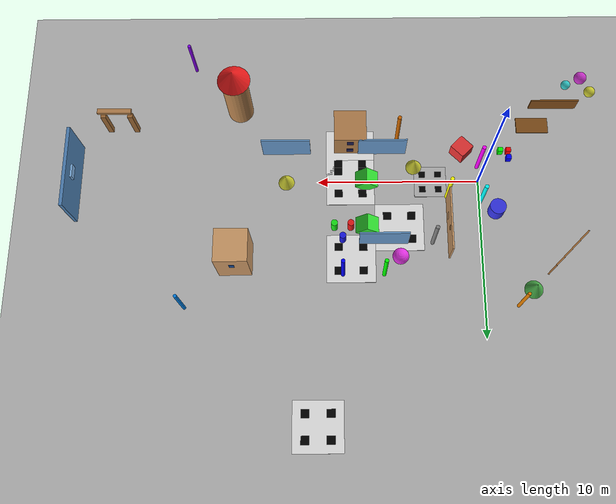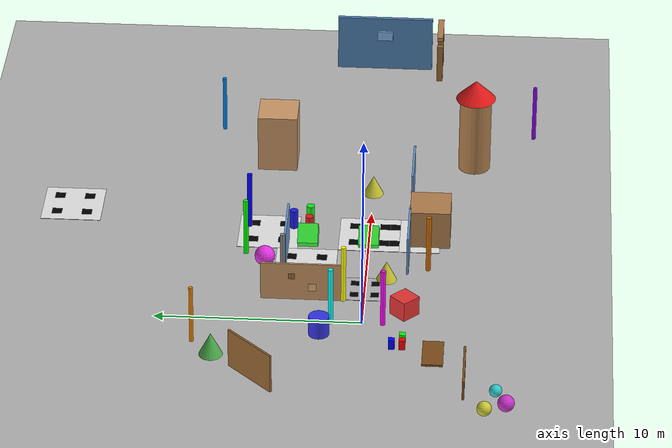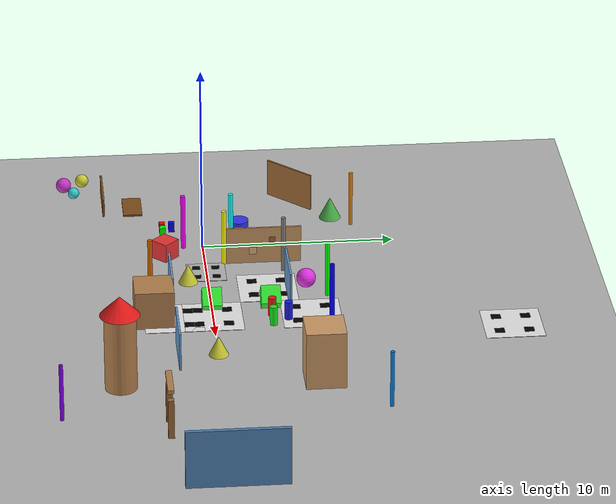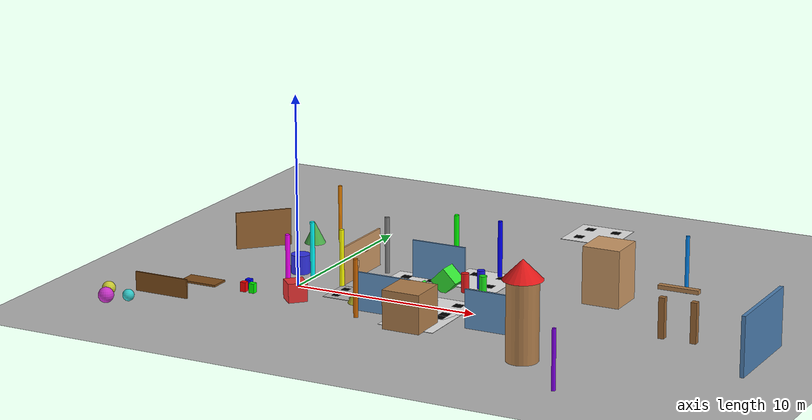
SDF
<?xml version="1.0"?>
<sdf version="1.9">
  <world name="custom_world">

    <!-- ========== PX4 必需配置：球面坐标系 ========== -->
    <spherical_coordinates>
      <surface_model>EARTH_WGS84</surface_model>
      <world_frame_orientation>ENU</world_frame_orientation>
      <latitude_deg>47.397742</latitude_deg>
      <longitude_deg>8.545594</longitude_deg>
      <elevation>488.0</elevation>
      <heading_deg>0</heading_deg>
    </spherical_coordinates>

    <!-- ========== 环境设置 ========== -->
    <gravity>0 0 -9.8</gravity>
    <magnetic_field>6e-06 2.3e-05 -4.2e-05</magnetic_field>
    <atmosphere type='adiabatic'/>

    <!-- ========== PX4 必需插件 ========== -->
    <plugin
      filename="gz-sim-physics-system"
      name="gz::sim::systems::Physics">
    </plugin>
    <plugin
      filename="gz-sim-user-commands-system"
      name="gz::sim::systems::UserCommands">
    </plugin>
    <plugin
      filename="gz-sim-scene-broadcaster-system"
      name="gz::sim::systems::SceneBroadcaster">
    </plugin>
    <plugin
      filename="gz-sim-imu-system"
      name="gz::sim::systems::Imu">
    </plugin>
    <plugin
      filename="gz-sim-magnetometer-system"
      name="gz::sim::systems::Magnetometer">
    </plugin>
    <plugin
      filename="gz-sim-air-pressure-system"
      name="gz::sim::systems::AirPressure">
    </plugin>
    <plugin
      filename="gz-sim-sensors-system"
      name="gz::sim::systems::Sensors">
      <render_engine>ogre2</render_engine>
    </plugin>
    <plugin
      filename="gz-sim-navsat-system"
      name="gz::sim::systems::NavSat">
    </plugin>

    <!-- 物理引擎设置 -->
    <physics name="1ms" type="ignored">
      <max_step_size>0.001</max_step_size>
      <real_time_factor>1.0</real_time_factor>
    </physics>

    <!-- 添加地面 -->
    <model name="ground_plane">
      <static>true</static>
      <link name="link">
        <collision name="collision">
          <geometry>
            <plane>
              <normal>0 0 1</normal>
              <size>100 100</size>
            </plane>
          </geometry>
        </collision>
        <visual name="visual">
          <geometry>
            <plane>
              <normal>0 0 1</normal>
              <size>100 100</size>
            </plane>
          </geometry>
          <material>
            <ambient>0.7 0.7 0.7 1</ambient>
            <diffuse>0.7 0.7 0.7 1</diffuse>
            <specular>0 0 0 0</specular>
          </material>
        </visual>
      </link>
    </model>

    <!-- 添加方向光 -->
    <light name="sun" type="directional">
      <pose>0 0 10 0 0 0</pose>
      <direction>-0.5 0.5 -1</direction>
      <diffuse>1 1 1 1</diffuse>
      <specular>0.5 0.5 0.5 1</specular>
      <attenuation>
        <range>1000</range>
        <constant>0.9</constant>
        <linear>0.01</linear>
        <quadratic>0.001</quadratic>
      </attenuation>
      <cast_shadows>true</cast_shadows>
    </light>

    <!-- ========== 视觉SLAM特征点 ========== -->
<model name="extended_checkerboard1">
      <pose>8 0 0.02 0 0 0</pose>
      <static>true</static>
      <link name="link">
        <visual name="board">
          <geometry>
            <box>
              <size>3 3 0.02</size>
            </box>
          </geometry>
          <material>
            <ambient>0.9 0.9 0.9 1</ambient>
            <diffuse>0.9 0.9 0.9 1</diffuse>
          </material>
        </visual>
        <!-- 棋盘格图案 -->
        <visual name="checker_n1">
          <pose>0.75 0.75 0.021 0 0 0</pose>
          <geometry>
            <box>
              <size>0.5 0.5 0.001</size>
            </box>
          </geometry>
          <material>
            <ambient>0 0 0 1</ambient>
            <diffuse>0 0 0 1</diffuse>
          </material>
        </visual>
        <visual name="checker_n2">
          <pose>-0.75 0.75 0.021 0 0 0</pose>
          <geometry>
            <box>
              <size>0.5 0.5 0.001</size>
            </box>
          </geometry>
          <material>
            <ambient>0 0 0 1</ambient>
            <diffuse>0 0 0 1</diffuse>
          </material>
        </visual>
        <visual name="checker_n3">
          <pose>0.75 -0.75 0.021 0 0 0</pose>
          <geometry>
            <box>
              <size>0.5 0.5 0.001</size>
            </box>
          </geometry>
          <material>
            <ambient>0 0 0 1</ambient>
            <diffuse>0 0 0 1</diffuse>
          </material>
        </visual>
        <visual name="checker_n4">
          <pose>-0.75 -0.75 0.021 0 0 0</pose>
          <geometry>
            <box>
              <size>0.5 0.5 0.001</size>
            </box>
          </geometry>
          <material>
            <ambient>0 0 0 1</ambient>
            <diffuse>0 0 0 1</diffuse>
          </material>
        </visual>
      </link>
    </model>

<model name="extended_checkerboard2">
      <pose>8 5 0.02 0 0 0</pose>
      <static>true</static>
      <link name="link">
        <visual name="board">
          <geometry>
            <box>
              <size>3 3 0.02</size>
            </box>
          </geometry>
          <material>
            <ambient>0.9 0.9 0.9 1</ambient>
            <diffuse>0.9 0.9 0.9 1</diffuse>
          </material>
        </visual>
        <!-- 棋盘格图案 -->
        <visual name="checker_n1">
          <pose>0.75 0.75 0.021 0 0 0</pose>
          <geometry>
            <box>
              <size>0.5 0.5 0.001</size>
            </box>
          </geometry>
          <material>
            <ambient>0 0 0 1</ambient>
            <diffuse>0 0 0 1</diffuse>
          </material>
        </visual>
        <visual name="checker_n2">
          <pose>-0.75 0.75 0.021 0 0 0</pose>
          <geometry>
            <box>
              <size>0.5 0.5 0.001</size>
            </box>
          </geometry>
          <material>
            <ambient>0 0 0 1</ambient>
            <diffuse>0 0 0 1</diffuse>
          </material>
        </visual>
        <visual name="checker_n3">
          <pose>0.75 -0.75 0.021 0 0 0</pose>
          <geometry>
            <box>
              <size>0.5 0.5 0.001</size>
            </box>
          </geometry>
          <material>
            <ambient>0 0 0 1</ambient>
            <diffuse>0 0 0 1</diffuse>
          </material>
        </visual>
        <visual name="checker_n4">
          <pose>-0.75 -0.75 0.021 0 0 0</pose>
          <geometry>
            <box>
              <size>0.5 0.5 0.001</size>
            </box>
          </geometry>
          <material>
            <ambient>0 0 0 1</ambient>
            <diffuse>0 0 0 1</diffuse>
          </material>
        </visual>
      </link>
    </model>

    <model name="extended_checkerboard3">
      <pose>5 3 0.02 0 0 0</pose>
      <static>true</static>
      <link name="link">
        <visual name="board">
          <geometry>
            <box>
              <size>3 3 0.02</size>
            </box>
          </geometry>
          <material>
            <ambient>0.9 0.9 0.9 1</ambient>
            <diffuse>0.9 0.9 0.9 1</diffuse>
          </material>
        </visual>
        <!-- 棋盘格图案 -->
        <visual name="checker_n1">
          <pose>0.75 0.75 0.021 0 0 0</pose>
          <geometry>
            <box>
              <size>0.5 0.5 0.001</size>
            </box>
          </geometry>
          <material>
            <ambient>0 0 0 1</ambient>
            <diffuse>0 0 0 1</diffuse>
          </material>
        </visual>
        <visual name="checker_n2">
          <pose>-0.75 0.75 0.021 0 0 0</pose>
          <geometry>
            <box>
              <size>0.5 0.5 0.001</size>
            </box>
          </geometry>
          <material>
            <ambient>0 0 0 1</ambient>
            <diffuse>0 0 0 1</diffuse>
          </material>
        </visual>
        <visual name="checker_n3">
          <pose>0.75 -0.75 0.021 0 0 0</pose>
          <geometry>
            <box>
              <size>0.5 0.5 0.001</size>
            </box>
          </geometry>
          <material>
            <ambient>0 0 0 1</ambient>
            <diffuse>0 0 0 1</diffuse>
          </material>
        </visual>
        <visual name="checker_n4">
          <pose>-0.75 -0.75 0.021 0 0 0</pose>
          <geometry>
            <box>
              <size>0.5 0.5 0.001</size>
            </box>
          </geometry>
          <material>
            <ambient>0 0 0 1</ambient>
            <diffuse>0 0 0 1</diffuse>
          </material>
        </visual>
      </link>
    </model>

<model name="extended_checkerboard5">
      <pose>8 -2 0.02 0 0 0</pose>
      <static>true</static>
      <link name="link">
        <visual name="board">
          <geometry>
            <box>
              <size>3 3 0.02</size>
            </box>
          </geometry>
          <material>
            <ambient>0.9 0.9 0.9 1</ambient>
            <diffuse>0.9 0.9 0.9 1</diffuse>
          </material>
        </visual>
        <!-- 棋盘格图案 -->
        <visual name="checker_n1">
          <pose>0.75 0.75 0.021 0 0 0</pose>
          <geometry>
            <box>
              <size>0.5 0.5 0.001</size>
            </box>
          </geometry>
          <material>
            <ambient>0 0 0 1</ambient>
            <diffuse>0 0 0 1</diffuse>
          </material>
        </visual>
        <visual name="checker_n2">
          <pose>-0.75 0.75 0.021 0 0 0</pose>
          <geometry>
            <box>
              <size>0.5 0.5 0.001</size>
            </box>
          </geometry>
          <material>
            <ambient>0 0 0 1</ambient>
            <diffuse>0 0 0 1</diffuse>
          </material>
        </visual>
        <visual name="checker_n3">
          <pose>0.75 -0.75 0.021 0 0 0</pose>
          <geometry>
            <box>
              <size>0.5 0.5 0.001</size>
            </box>
          </geometry>
          <material>
            <ambient>0 0 0 1</ambient>
            <diffuse>0 0 0 1</diffuse>
          </material>
        </visual>
        <visual name="checker_n4">
          <pose>-0.75 -0.75 0.021 0 0 0</pose>
          <geometry>
            <box>
              <size>0.5 0.5 0.001</size>
            </box>
          </geometry>
          <material>
            <ambient>0 0 0 1</ambient>
            <diffuse>0 0 0 1</diffuse>
          </material>
        </visual>
      </link>
    </model>

    <!-- 棋盘格地面标记1（黑白棋盘） -->
    <model name="checkerboard_1">
      <pose>3 0 0.02 0 0 0</pose>
      <static>true</static>
      <link name="link">
        <visual name="visual">
          <geometry>
            <box>
              <size>2 2 0.02</size>
            </box>
          </geometry>
          <material>
            <ambient>0.3 0.3 0.3 1</ambient>
            <diffuse>0.7 0.7 0.7 1</diffuse>
            <specular>0.1 0.1 0.1 1</specular>
          </material>
        </visual>

        <!-- 添加棋盘纹理通过多个小方块实现 -->
        <visual name="checker_1">
          <pose>0.5 0.5 0.021 0 0 0</pose>
          <geometry>
            <box>
              <size>0.4 0.4 0.001</size>
            </box>
          </geometry>
          <material>
            <ambient>0 0 0 1</ambient>
            <diffuse>0 0 0 1</diffuse>
          </material>
        </visual>
        <visual name="checker_2">
          <pose>-0.5 0.5 0.021 0 0 0</pose>
          <geometry>
            <box>
              <size>0.4 0.4 0.001</size>
            </box>
          </geometry>
          <material>
            <ambient>0 0 0 1</ambient>
            <diffuse>0 0 0 1</diffuse>
          </material>
        </visual>
        <visual name="checker_3">
          <pose>0.5 -0.5 0.021 0 0 0</pose>
          <geometry>
            <box>
              <size>0.4 0.4 0.001</size>
            </box>
          </geometry>
          <material>
            <ambient>0 0 0 1</ambient>
            <diffuse>0 0 0 1</diffuse>
          </material>
        </visual>
        <visual name="checker_4">
          <pose>-0.5 -0.5 0.021 0 0 0</pose>
          <geometry>
            <box>
              <size>0.4 0.4 0.001</size>
            </box>
          </geometry>
          <material>
            <ambient>0 0 0 1</ambient>
            <diffuse>0 0 0 1</diffuse>
          </material>
        </visual>
      </link>
    </model>

    <!-- 扩展区域：更多特征物体 -->

    <!-- 扩展区域1：西北区域 (-10到0, 0到10) -->
    <model name="extended_wall_nw1">
      <pose>-5 5 1 0 0 0.785</pose>
      <static>true</static>
      <link name="link">
        <collision name="collision">
          <geometry>
            <box>
              <size>3 0.1 2</size>
            </box>
          </geometry>
        </collision>
        <visual name="visual">
          <geometry>
            <box>
              <size>3 0.1 2</size>
            </box>
          </geometry>
          <material>
            <ambient>0.6 0.4 0.2 1</ambient>
            <diffuse>0.6 0.4 0.2 1</diffuse>
          </material>
        </visual>
      </link>
    </model>

    <model name="extended_pyramid_nw">
      <pose>-3 7 0.5 0 0 0</pose>
      <static>true</static>
      <link name="link">
        <collision name="collision">
          <geometry>
            <cone>
              <radius>0.6</radius>
              <length>1.2</length>
            </cone>
          </geometry>
        </collision>
        <visual name="visual">
          <geometry>
            <cone>
              <radius>0.6</radius>
              <length>1.2</length>
            </cone>
          </geometry>
          <material>
            <ambient>0.3 0.7 0.3 1</ambient>
            <diffuse>0.3 0.7 0.3 1</diffuse>
          </material>
        </visual>
      </link>
    </model>

    <!-- 扩展区域2：东北区域 (10到20, 0到10) -->
    <model name="extended_building_ne">
      <pose>15 5 1.5 0 0 0</pose>
      <static>true</static>
      <link name="link">
        <collision name="collision">
          <geometry>
            <box>
              <size>2 2 3</size>
            </box>
          </geometry>
        </collision>
        <visual name="visual">
          <geometry>
            <box>
              <size>2 2 3</size>
            </box>
          </geometry>
          <material>
            <ambient>0.8 0.6 0.4 1</ambient>
            <diffuse>0.8 0.6 0.4 1</diffuse>
          </material>
        </visual>
        <!-- 窗户细节 -->
        <visual name="window_ne1">
          <pose>0 1.01 0.5 0 0 0</pose>
          <geometry>
            <box>
              <size>0.3 0.02 0.5</size>
            </box>
          </geometry>
          <material>
            <ambient>0.1 0.3 0.6 1</ambient>
            <diffuse>0.1 0.3 0.6 1</diffuse>
          </material>
        </visual>
      </link>
    </model>

    <model name="extended_cylinder_array_ne">
      <pose>8 3 0 0 0 0</pose>
      <static>true</static>
      <link name="link">
        <visual name="cyl1">
          <pose>0 0 0.5 0 0 0</pose>
          <geometry>
            <cylinder>
              <radius>0.2</radius>
              <length>1</length>
            </cylinder>
          </geometry>
          <material>
            <ambient>0.9 0.1 0.1 1</ambient>
            <diffuse>0.9 0.1 0.1 1</diffuse>
          </material>
        </visual>
        <visual name="cyl2">
          <pose>1 0 0.5 0 0 0</pose>
          <geometry>
            <cylinder>
              <radius>0.2</radius>
              <length>1</length>
            </cylinder>
          </geometry>
          <material>
            <ambient>0.1 0.9 0.1 1</ambient>
            <diffuse>0.1 0.9 0.1 1</diffuse>
          </material>
        </visual>
        <visual name="cyl3">
          <pose>0.5 0.8 0.5 0 0 0</pose>
          <geometry>
            <cylinder>
              <radius>0.2</radius>
              <length>1</length>
            </cylinder>
          </geometry>
          <material>
            <ambient>0.1 0.1 0.9 1</ambient>
            <diffuse>0.1 0.1 0.9 1</diffuse>
          </material>
        </visual>
      </link>
    </model>

    <!-- 扩展区域3：西南区域 (-10到0, -10到0) -->
    <model name="extended_maze_sw">
      <pose>-5 -5 0.25 0 0 0</pose>
      <static>true</static>
      <link name="link">
        <!-- L形墙1 -->
        <visual name="maze_wall1">
          <pose>0 0 0.5 0 0 0</pose>
          <geometry>
            <box>
              <size>3 0.1 1</size>
            </box>
          </geometry>
          <material>
            <ambient>0.5 0.3 0.1 1</ambient>
            <diffuse>0.5 0.3 0.1 1</diffuse>
          </material>
        </visual>
        <visual name="maze_wall2">
          <pose>1.5 1.5 0.5 1.57 0 0</pose>
          <geometry>
            <box>
              <size>2 0.1 1</size>
            </box>
          </geometry>
          <material>
            <ambient>0.5 0.3 0.1 1</ambient>
            <diffuse>0.5 0.3 0.1 1</diffuse>
          </material>
        </visual>
      </link>
    </model>

    <model name="extended_sphere_cluster_sw">
      <pose>-7 -7 0.5 0 0 0</pose>
      <static>true</static>
      <link name="link">
        <visual name="sphere1">
          <pose>0 0 0 0 0 0</pose>
          <geometry>
            <sphere>
              <radius>0.4</radius>
            </sphere>
          </geometry>
          <material>
            <ambient>0.8 0.2 0.8 1</ambient>
            <diffuse>0.8 0.2 0.8 1</diffuse>
          </material>
        </visual>
        <visual name="sphere2">
          <pose>1 0.5 0 0 0 0</pose>
          <geometry>
            <sphere>
              <radius>0.3</radius>
            </sphere>
          </geometry>
          <material>
            <ambient>0.2 0.8 0.8 1</ambient>
            <diffuse>0.2 0.8 0.8 1</diffuse>
          </material>
        </visual>
        <visual name="sphere3">
          <pose>-0.5 1 0 0 0 0</pose>
          <geometry>
            <sphere>
              <radius>0.35</radius>
            </sphere>
          </geometry>
          <material>
            <ambient>0.8 0.8 0.2 1</ambient>
            <diffuse>0.8 0.8 0.2 1</diffuse>
          </material>
        </visual>
      </link>
    </model>

    <!-- 扩展区域4：东南区域 (10到20, -10到0) -->
    <model name="extended_tower_se">
      <pose>15 -5 2 0 0 0</pose>
      <static>true</static>
      <link name="link">
        <collision name="collision">
          <geometry>
            <cylinder>
              <radius>0.8</radius>
              <length>4</length>
            </cylinder>
          </geometry>
        </collision>
        <visual name="visual">
          <geometry>
            <cylinder>
              <radius>0.8</radius>
              <length>4</length>
            </cylinder>
          </geometry>
          <material>
            <ambient>0.7 0.5 0.3 1</ambient>
            <diffuse>0.7 0.5 0.3 1</diffuse>
          </material>
        </visual>
        <!-- 塔顶 -->
        <visual name="tower_top">
          <pose>0 0 2.5 0 0 0</pose>
          <geometry>
            <cone>
              <radius>1</radius>
              <length>1</length>
            </cone>
          </geometry>
          <material>
            <ambient>0.9 0.1 0.1 1</ambient>
            <diffuse>0.9 0.1 0.1 1</diffuse>
          </material>
        </visual>
      </link>
    </model>

    <!-- 扩展区域5：远北区域 (0到20, 10到20) -->
    <model name="extended_checkerboard_north">
      <pose>10 15 0.02 0 0 0</pose>
      <static>true</static>
      <link name="link">
        <visual name="board">
          <geometry>
            <box>
              <size>3 3 0.02</size>
            </box>
          </geometry>
          <material>
            <ambient>0.9 0.9 0.9 1</ambient>
            <diffuse>0.9 0.9 0.9 1</diffuse>
          </material>
        </visual>
        <!-- 棋盘格图案 -->
        <visual name="checker_n1">
          <pose>0.75 0.75 0.021 0 0 0</pose>
          <geometry>
            <box>
              <size>0.5 0.5 0.001</size>
            </box>
          </geometry>
          <material>
            <ambient>0 0 0 1</ambient>
            <diffuse>0 0 0 1</diffuse>
          </material>
        </visual>
        <visual name="checker_n2">
          <pose>-0.75 0.75 0.021 0 0 0</pose>
          <geometry>
            <box>
              <size>0.5 0.5 0.001</size>
            </box>
          </geometry>
          <material>
            <ambient>0 0 0 1</ambient>
            <diffuse>0 0 0 1</diffuse>
          </material>
        </visual>
        <visual name="checker_n3">
          <pose>0.75 -0.75 0.021 0 0 0</pose>
          <geometry>
            <box>
              <size>0.5 0.5 0.001</size>
            </box>
          </geometry>
          <material>
            <ambient>0 0 0 1</ambient>
            <diffuse>0 0 0 1</diffuse>
          </material>
        </visual>
        <visual name="checker_n4">
          <pose>-0.75 -0.75 0.021 0 0 0</pose>
          <geometry>
            <box>
              <size>0.5 0.5 0.001</size>
            </box>
          </geometry>
          <material>
            <ambient>0 0 0 1</ambient>
            <diffuse>0 0 0 1</diffuse>
          </material>
        </visual>
      </link>
    </model>

    <!-- 扩展区域6：远东区域 (20到30, -10到10) -->
    <model name="extended_wall_east1">
      <pose>25 0 1.5 0 0 1.57</pose>
      <static>true</static>
      <link name="link">
        <collision name="collision">
          <geometry>
            <box>
              <size>5 0.2 3</size>
            </box>
          </geometry>
        </collision>
        <visual name="visual">
          <geometry>
            <box>
              <size>5 0.2 3</size>
            </box>
          </geometry>
          <material>
            <ambient>0.3 0.5 0.7 1</ambient>
            <diffuse>0.3 0.5 0.7 1</diffuse>
          </material>
        </visual>
        <!-- 纹理细节 -->
        <visual name="wall_detail1">
          <pose>0 0.11 0.5 0 0 0</pose>
          <geometry>
            <box>
              <size>0.8 0.22 0.5</size>
            </box>
          </geometry>
          <material>
            <ambient>0.5 0.7 0.9 1</ambient>
            <diffuse>0.5 0.7 0.9 1</diffuse>
          </material>
        </visual>
      </link>
    </model>

    <model name="extended_arch_east">
      <pose>22 -3 1.5 0 0 0</pose>
      <static>true</static>
      <link name="link">
        <!-- 左柱 -->
        <visual name="left_column">
          <pose>-0.8 0 1 0 0 0</pose>
          <geometry>
            <box>
              <size>0.3 0.3 2</size>
            </box>
          </geometry>
          <material>
            <ambient>0.6 0.4 0.2 1</ambient>
            <diffuse>0.6 0.4 0.2 1</diffuse>
          </material>
        </visual>
        <!-- 右柱 -->
        <visual name="right_column">
          <pose>0.8 0 1 0 0 0</pose>
          <geometry>
            <box>
              <size>0.3 0.3 2</size>
            </box>
          </geometry>
          <material>
            <ambient>0.6 0.4 0.2 1</ambient>
            <diffuse>0.6 0.4 0.2 1</diffuse>
          </material>
        </visual>
        <!-- 横梁 -->
        <visual name="beam">
          <pose>0 0 2.5 0 0 0</pose>
          <geometry>
            <box>
              <size>2 0.3 0.2</size>
            </box>
          </geometry>
          <material>
            <ambient>0.7 0.5 0.3 1</ambient>
            <diffuse>0.7 0.5 0.3 1</diffuse>
          </material>
        </visual>
      </link>
    </model>

    <!-- 扩展障碍物：更多细杆 -->
    <model name="extended_pole_9">
      <pose>-2 8 1.5 0 0 0</pose>
      <static>true</static>
      <link name="link">
        <collision name="collision">
          <geometry>
            <cylinder>
              <radius>0.1</radius>
              <length>3</length>
            </cylinder>
          </geometry>
        </collision>
        <visual name="visual">
          <geometry>
            <cylinder>
              <radius>0.1</radius>
              <length>3</length>
            </cylinder>
          </geometry>
          <material>
            <ambient>0.9 0.5 0 1</ambient>
            <diffuse>0.9 0.5 0 1</diffuse>
          </material>
        </visual>
      </link>
    </model>

    <model name="extended_pole_10">
      <pose>18 8 1.5 0 0 0</pose>
      <static>true</static>
      <link name="link">
        <collision name="collision">
          <geometry>
            <cylinder>
              <radius>0.1</radius>
              <length>3</length>
            </cylinder>
          </geometry>
        </collision>
        <visual name="visual">
          <geometry>
            <cylinder>
              <radius>0.1</radius>
              <length>3</length>
            </cylinder>
          </geometry>
          <material>
            <ambient>0 0.5 0.9 1</ambient>
            <diffuse>0 0.5 0.9 1</diffuse>
          </material>
        </visual>
      </link>
    </model>

    <model name="extended_pole_11">
      <pose>18 -8 1.5 0 0 0</pose>
      <static>true</static>
      <link name="link">
        <collision name="collision">
          <geometry>
            <cylinder>
              <radius>0.1</radius>
              <length>3</length>
            </cylinder>
          </geometry>
        </collision>
        <visual name="visual">
          <geometry>
            <cylinder>
              <radius>0.1</radius>
              <length>3</length>
            </cylinder>
          </geometry>
          <material>
            <ambient>0.5 0 0.9 1</ambient>
            <diffuse>0.5 0 0.9 1</diffuse>
          </material>
        </visual>
      </link>
    </model>

    <!-- 保留原有的所有物体 -->
    <!-- 纹理丰富的墙面1 -->
    <model name="feature_wall_1">
      <pose>2 3 1 0 0 1.57</pose>
      <static>true</static>
      <link name="link">
        <collision name="collision">
          <geometry>
            <box>
              <size>4 0.1 2</size>
            </box>
          </geometry>
        </collision>
        <visual name="visual">
          <geometry>
            <box>
              <size>4 0.1 2</size>
            </box>
          </geometry>
          <!-- 通过多个彩色方块创建纹理 -->
          <material>
            <ambient>0.8 0.6 0.4 1</ambient>
            <diffuse>0.8 0.6 0.4 1</diffuse>
            <specular>0.3 0.3 0.3 1</specular>
          </material>
        </visual>

        <!-- 添加纹理细节 -->
        <visual name="texture_detail_1">
          <pose>0.5 0 0.3 0 0 0</pose>
          <geometry>
            <box>
              <size>0.3 0.11 0.3</size>
            </box>
          </geometry>
          <material>
            <ambient>0.6 0.4 0.2 1</ambient>
            <diffuse>0.6 0.4 0.2 1</diffuse>
          </material>
        </visual>

        <visual name="texture_detail_2">
          <pose>-0.5 0 -0.3 0 0 0</pose>
          <geometry>
            <box>
              <size>0.4 0.11 0.4</size>
            </box>
          </geometry>
          <material>
            <ambient>0.9 0.7 0.5 1</ambient>
            <diffuse>0.9 0.7 0.5 1</diffuse>
          </material>
        </visual>
      </link>
    </model>

    <!-- 纹理丰富的墙面2 -->
    <model name="feature_wall_2">
      <pose>6 -2 1 0 0 0</pose>
      <static>true</static>
      <link name="link">
        <collision name="collision">
          <geometry>
            <box>
              <size>3 0.1 2</size>
            </box>
          </geometry>
        </collision>
        <visual name="visual">
          <geometry>
            <box>
              <size>3 0.1 2</size>
            </box>
          </geometry>
          <material>
            <ambient>0.4 0.6 0.8 1</ambient>
            <diffuse>0.4 0.6 0.8 1</diffuse>
            <specular>0.3 0.3 0.3 1</specular>
          </material>
        </visual>
      </link>
    </model>

     <model name="feature_wall_11">
      <pose>6 4 1 0 0 0</pose>
      <static>true</static>
      <link name="link">
        <collision name="collision">
          <geometry>
            <box>
              <size>3 0.1 2</size>
            </box>
          </geometry>
        </collision>
        <visual name="visual">
          <geometry>
            <box>
              <size>3 0.1 2</size>
            </box>
          </geometry>
          <material>
            <ambient>0.4 0.6 0.8 1</ambient>
            <diffuse>0.4 0.6 0.8 1</diffuse>
            <specular>0.3 0.3 0.3 1</specular>
          </material>
        </visual>
      </link>
    </model>

    <!-- 纹理丰富的墙面3 -->
    <model name="feature_wall_3">
      <pose>12 -2 1 0 0 0</pose>
      <static>true</static>
      <link name="link">
        <collision name="collision">
          <geometry>
            <box>
              <size>3 0.1 2</size>
            </box>
          </geometry>
        </collision>
        <visual name="visual">
          <geometry>
            <box>
              <size>3 0.1 2</size>
            </box>
          </geometry>
          <material>
            <ambient>0.4 0.6 0.8 1</ambient>
            <diffuse>0.4 0.6 0.8 1</diffuse>
            <specular>0.3 0.3 0.3 1</specular>
          </material>
        </visual>
      </link>
    </model>

    <!-- 角点丰富的立方体1 -->
    <model name="feature_cube_1">
      <pose>1 -2 0.5 0 0 0.785</pose>
      <static>true</static>
      <link name="link">
        <collision name="collision">
          <geometry>
            <box>
              <size>1 1 1</size>
            </box>
          </geometry>
        </collision>
        <visual name="visual">
          <geometry>
            <box>
              <size>1 1 1</size>
            </box>
          </geometry>
          <material>
            <ambient>0.9 0.2 0.2 1</ambient>
            <diffuse>0.9 0.2 0.2 1</diffuse>
            <specular>0.3 0.3 0.3 1</specular>
          </material>
        </visual>
      </link>
    </model>

    <!-- 角点丰富的立方体2 -->
    <model name="feature_cube_2">
      <pose>7 3 0.5 0 0.785 0</pose>
      <static>true</static>
      <link name="link">
        <collision name="collision">
          <geometry>
            <box>
              <size>1 1 1</size>
            </box>
          </geometry>
        </collision>
        <visual name="visual">
          <geometry>
            <box>
              <size>1 1 1</size>
            </box>
          </geometry>
          <material>
            <ambient>0.2 0.9 0.2 1</ambient>
            <diffuse>0.2 0.9 0.2 1</diffuse>
            <specular>0.3 0.3 0.3 1</specular>
          </material>
        </visual>
      </link>
    </model>

    <model name="feature_cube_3">
      <pose>7 0 0.5 0 0.785 0</pose>
      <static>true</static>
      <link name="link">
        <collision name="collision">
          <geometry>
            <box>
              <size>1 1 1</size>
            </box>
          </geometry>
        </collision>
        <visual name="visual">
          <geometry>
            <box>
              <size>1 1 1</size>
            </box>
          </geometry>
          <material>
            <ambient>0.2 0.9 0.2 1</ambient>
            <diffuse>0.2 0.9 0.2 1</diffuse>
            <specular>0.3 0.3 0.3 1</specular>
          </material>
        </visual>
      </link>
    </model>

    <!-- 金字塔形状特征 -->
    <model name="feature_pyramid">
      <pose>4 -1 0.5 0 0 0</pose>
      <static>true</static>
      <link name="link">
        <collision name="collision">
          <geometry>
            <cone>
              <radius>0.5</radius>
              <length>1</length>
            </cone>
          </geometry>
        </collision>
        <visual name="visual">
          <geometry>
            <cone>
              <radius>0.5</radius>
              <length>1</length>
            </cone>
          </geometry>
          <material>
            <ambient>0.8 0.8 0.2 1</ambient>
            <diffuse>0.8 0.8 0.2 1</diffuse>
            <specular>0.3 0.3 0.3 1</specular>
          </material>
        </visual>
      </link>
    </model>

    <model name="feature_pyramid1">
      <pose>12 -0 0.5 0 0 0</pose>
      <static>true</static>
      <link name="link">
        <collision name="collision">
          <geometry>
            <cone>
              <radius>0.5</radius>
              <length>1</length>
            </cone>
          </geometry>
        </collision>
        <visual name="visual">
          <geometry>
            <cone>
              <radius>0.5</radius>
              <length>1</length>
            </cone>
          </geometry>
          <material>
            <ambient>0.8 0.8 0.2 1</ambient>
            <diffuse>0.8 0.8 0.2 1</diffuse>
            <specular>0.3 0.3 0.3 1</specular>
          </material>
        </visual>
      </link>
    </model>

    <!-- 圆柱体特征 -->
    <model name="feature_cylinder_1">
      <pose>-1 2 0.5 0 0 0</pose>
      <static>true</static>
      <link name="link">
        <collision name="collision">
          <geometry>
            <cylinder>
              <radius>0.5</radius>
              <length>1</length>
            </cylinder>
          </geometry>
        </collision>
        <visual name="visual">
          <geometry>
            <cylinder>
              <radius>0.5</radius>
              <length>1</length>
            </cylinder>
          </geometry>
          <material>
            <ambient>0.2 0.2 0.9 1</ambient>
            <diffuse>0.2 0.2 0.9 1</diffuse>
            <specular>0.3 0.3 0.3 1</specular>
          </material>
        </visual>
      </link>
    </model>

    <!-- 球体特征 -->
    <model name="feature_sphere_1">
      <pose>5 5 0.5 0 0 0</pose>
      <static>true</static>
      <link name="link">
        <collision name="collision">
          <geometry>
            <sphere>
              <radius>0.5</radius>
            </sphere>
          </geometry>
        </collision>
        <visual name="visual">
          <geometry>
            <sphere>
              <radius>0.5</radius>
            </sphere>
          </geometry>
          <material>
            <ambient>0.9 0.2 0.9 1</ambient>
            <diffuse>0.9 0.2 0.9 1</diffuse>
            <specular>0.3 0.3 0.3 1</specular>
          </material>
        </visual>
      </link>
    </model>

    <!-- 纹理丰富的建筑物模拟 -->
    <model name="feature_building">
      <pose>8 -3 1 0 0 0</pose>
      <static>true</static>
      <link name="link">
        <collision name="collision">
          <geometry>
            <box>
              <size>2 2 2</size>
            </box>
          </geometry>
        </collision>
        <visual name="visual">
          <geometry>
            <box>
              <size>2 2 2</size>
            </box>
          </geometry>
          <material>
            <ambient>0.7 0.5 0.3 1</ambient>
            <diffuse>0.7 0.5 0.3 1</diffuse>
            <specular>0.3 0.3 0.3 1</specular>
          </material>
        </visual>

        <!-- 添加窗户细节 -->
        <visual name="window_1">
          <pose>0 1.01 0.5 0 0 0</pose>
          <geometry>
            <box>
              <size>0.4 0.02 0.4</size>
            </box>
          </geometry>
          <material>
            <ambient>0.1 0.1 0.3 1</ambient>
            <diffuse>0.1 0.1 0.3 1</diffuse>
          </material>
        </visual>
        <visual name="window_2">
          <pose>0 1.01 -0.5 0 0 0</pose>
          <geometry>
            <box>
              <size>0.4 0.02 0.4</size>
            </box>
          </geometry>
          <material>
            <ambient>0.1 0.1 0.3 1</ambient>
            <diffuse>0.1 0.1 0.3 1</diffuse>
          </material>
        </visual>
      </link>
    </model>

    <!-- 额外特征：彩色立方体阵列 -->
    <model name="color_cube_array_1">
      <pose>-2 -2 0.25 0 0 0</pose>
      <static>true</static>
      <link name="link">
        <visual name="cube_red">
          <pose>0 0 0 0 0 0</pose>
          <geometry>
            <box>
              <size>0.3 0.3 0.5</size>
            </box>
          </geometry>
          <material>
            <ambient>1 0 0 1</ambient>
            <diffuse>1 0 0 1</diffuse>
          </material>
        </visual>
        <visual name="cube_green">
          <pose>0.5 0 0 0 0 0</pose>
          <geometry>
            <box>
              <size>0.3 0.3 0.5</size>
            </box>
          </geometry>
          <material>
            <ambient>0 1 0 1</ambient>
            <diffuse>0 1 0 1</diffuse>
          </material>
        </visual>
        <visual name="cube_blue">
          <pose>0 0.5 0 0 0 0</pose>
          <geometry>
            <box>
              <size>0.3 0.3 0.5</size>
            </box>
          </geometry>
          <material>
            <ambient>0 0 1 1</ambient>
            <diffuse>0 0 1 1</diffuse>
          </material>
        </visual>
      </link>
    </model>

    <!-- 保留原有的所有细杆障碍物 -->

    <!-- 其他原有细杆pole_2到pole_8保持不变 -->
    <model name="pole_2">
      <pose>8.5 6 1.5 0 0 0</pose>
      <static>true</static>
      <link name="link">
        <collision name="collision">
          <geometry>
            <cylinder>
              <radius>0.12</radius>
              <length>3.0</length>
            </cylinder>
          </geometry>
        </collision>
        <visual name="visual">
          <geometry>
            <cylinder>
              <radius>0.12</radius>
              <length>3.0</length>
            </cylinder>
          </geometry>
          <material>
            <ambient>0 0 1 1</ambient>
            <diffuse>0 0 1 1</diffuse>
            <specular>0.3 0.3 0.3 1</specular>
          </material>
        </visual>
      </link>
    </model>

    <model name="pole_3">
      <pose>6 6 1.5 0 0 0</pose>
      <static>true</static>
      <link name="link">
        <collision name="collision">
          <geometry>
            <cylinder>
              <radius>0.12</radius>
              <length>3.0</length>
            </cylinder>
          </geometry>
        </collision>
        <visual name="visual">
          <geometry>
            <cylinder>
              <radius>0.12</radius>
              <length>3.0</length>
            </cylinder>
          </geometry>
          <material>
            <ambient>0 1 0 1</ambient>
            <diffuse>0 1 0 1</diffuse>
            <specular>0.3 0.3 0.3 1</specular>
          </material>
        </visual>
      </link>
    </model>

    <model name="pole_4">
      <pose>2 1 1.5 0 0 0</pose>
      <static>true</static>
      <link name="link">
        <collision name="collision">
          <geometry>
            <cylinder>
              <radius>0.12</radius>
              <length>3.0</length>
            </cylinder>
          </geometry>
        </collision>
        <visual name="visual">
          <geometry>
            <cylinder>
              <radius>0.12</radius>
              <length>3.0</length>
            </cylinder>
          </geometry>
          <material>
            <ambient>1 1 0 1</ambient>
            <diffuse>1 1 0 1</diffuse>
            <specular>0.3 0.3 0.3 1</specular>
          </material>
        </visual>
      </link>
    </model>

    <model name="pole_5">
      <pose>0 -1 1.5 0 0 0</pose>
      <static>true</static>
      <link name="link">
        <collision name="collision">
          <geometry>
            <cylinder>
              <radius>0.12</radius>
              <length>3.0</length>
            </cylinder>
          </geometry>
        </collision>
        <visual name="visual">
          <geometry>
            <cylinder>
              <radius>0.12</radius>
              <length>3.0</length>
            </cylinder>
          </geometry>
          <material>
            <ambient>1 0 1 1</ambient>
            <diffuse>1 0 1 1</diffuse>
            <specular>0.3 0.3 0.3 1</specular>
          </material>
        </visual>
      </link>
    </model>

    <model name="pole_6">
      <pose>0 1.5 1.5 0 0 0</pose>
      <static>true</static>
      <link name="link">
        <collision name="collision">
          <geometry>
            <cylinder>
              <radius>0.12</radius>
              <length>3.0</length>
            </cylinder>
          </geometry>
        </collision>
        <visual name="visual">
          <geometry>
            <cylinder>
              <radius>0.12</radius>
              <length>3.0</length>
            </cylinder>
          </geometry>
          <material>
            <ambient>0 1 1 1</ambient>
            <diffuse>0 1 1 1</diffuse>
            <specular>0.3 0.3 0.3 1</specular>
          </material>
        </visual>
      </link>
    </model>

    <model name="pole_7">
      <pose>5 -3 1.5 0 0 0</pose>
      <static>true</static>
      <link name="link">
        <collision name="collision">
          <geometry>
            <cylinder>
              <radius>0.12</radius>
              <length>3.0</length>
            </cylinder>
          </geometry>
        </collision>
        <visual name="visual">
          <geometry>
            <cylinder>
              <radius>0.12</radius>
              <length>3.0</length>
            </cylinder>
          </geometry>
          <material>
            <ambient>0.8 0.4 0 1</ambient>
            <diffuse>0.8 0.4 0 1</diffuse>
            <specular>0.3 0.3 0.3 1</specular>
          </material>
        </visual>
      </link>
    </model>

    <model name="pole_8">
      <pose>3 4 1.5 0 0 0</pose>
      <static>true</static>
      <link name="link">
        <collision name="collision">
          <geometry>
            <cylinder>
              <radius>0.12</radius>
              <length>3.0</length>
            </cylinder>
          </geometry>
        </collision>
        <visual name="visual">
          <geometry>
            <cylinder>
              <radius>0.12</radius>
              <length>3.0</length>
            </cylinder>
          </geometry>
          <material>
            <ambient>0.5 0.5 0.5 1</ambient>
            <diffuse>0.5 0.5 0.5 1</diffuse>
            <specular>0.3 0.3 0.3 1</specular>
          </material>
        </visual>
      </link>
    </model>

  </world>
</sdf>
